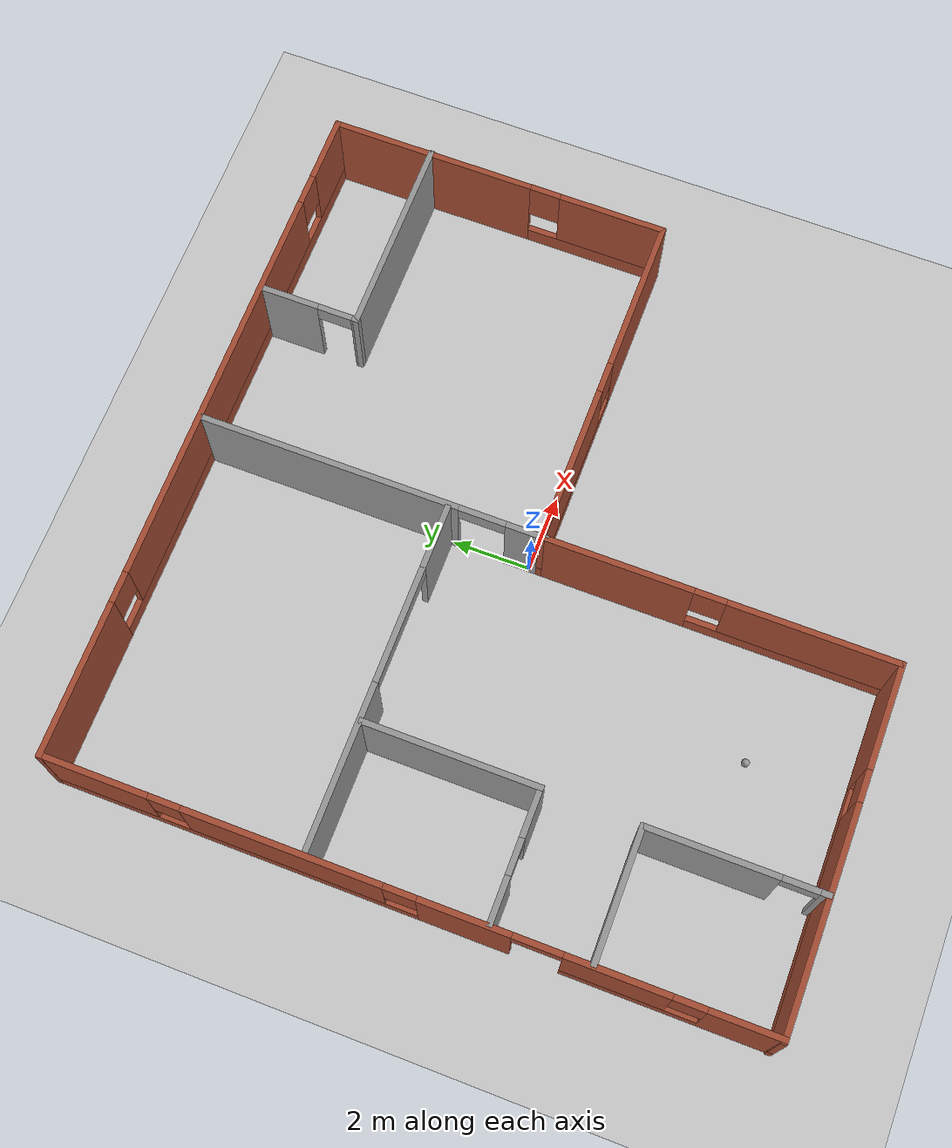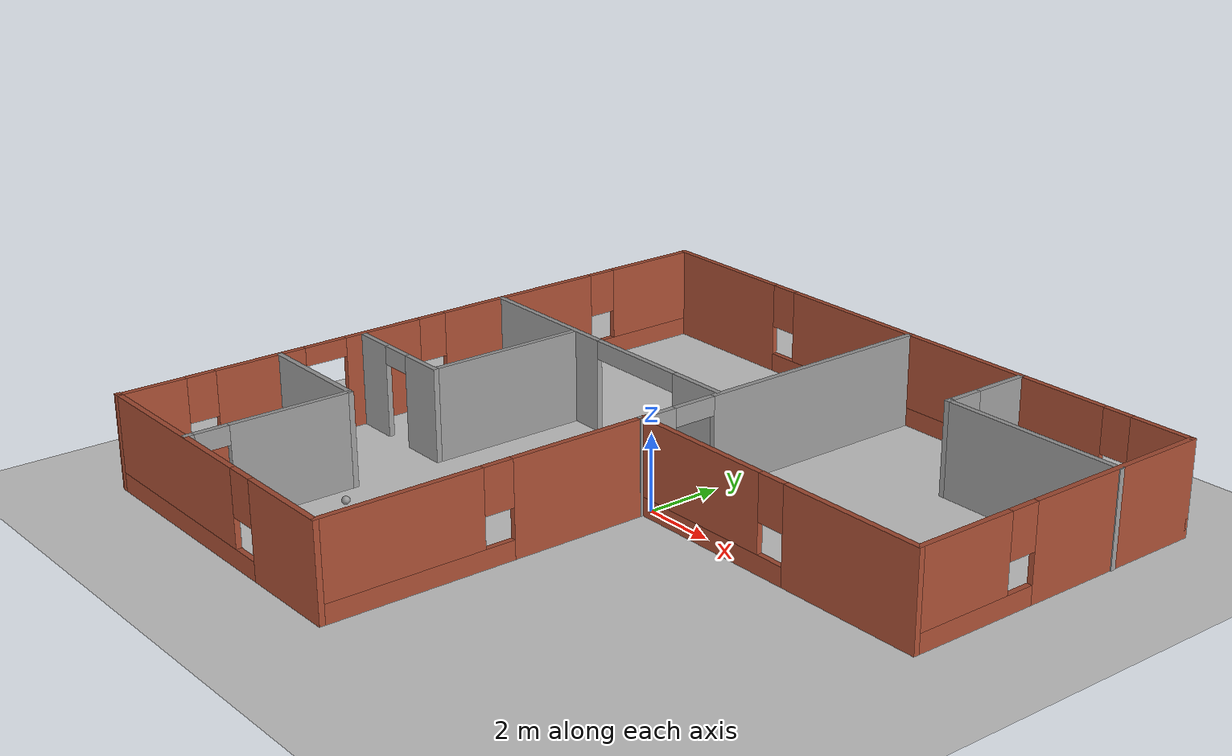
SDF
<sdf version="1.6">
 <world name="default">
  <plugin name="welcome_message" filename="libwelcome_message.so"/>
  <light name="sun" type="directional">
   <pose>0 0 10 0 -0 0</pose>
   <diffuse>0.8 0.8 0.8 1</diffuse>
   <specular>0.2 0.2 0.2 1</specular>
   <attenuation>
    <range>1000</range>
    <constant>0.9</constant>
    <linear>0.01</linear>
    <quadratic>0.001</quadratic>
   </attenuation>
   <direction>-0.5 0.1 -0.9</direction>
  </light>
  <model name="ground_plane">
   <static>1</static>
   <link name="link">
    <collision name="collision">
     <geometry><plane><normal>0 0 1</normal><size>100 100</size></plane></geometry>
     <surface><friction><ode><mu>100</mu><mu2>50</mu2></ode></friction></surface>
    </collision>
    <visual name="visual">
     <cast_shadows>0</cast_shadows>
     <geometry><plane><normal>0 0 1</normal><size>100 100</size></plane></geometry>
     <material>
      <script><uri>file://media/materials/scripts/gazebo.material</uri><name>Gazebo/Grey</name></script>
     </material>
    </visual>
   </link>
  </model>
  <gravity>0 0 -9.8</gravity>
  <magnetic_field>6e-06 2.3e-05 -4.2e-05</magnetic_field>
  <atmosphere type="adiabatic"/>
  <physics name="default_physics" default="0" type="ode">
   <max_step_size>0.001</max_step_size>
   <real_time_factor>1</real_time_factor>
   <real_time_update_rate>1000</real_time_update_rate>
  </physics>
  <scene><ambient>0.4 0.4 0.4 1</ambient><background>0.7 0.7 0.7 1</background><shadows>1</shadows></scene>
  <spherical_coordinates>
   <surface_model>EARTH_WGS84</surface_model>
   <latitude_deg>0</latitude_deg>
   <longitude_deg>0</longitude_deg>
   <elevation>0</elevation>
   <heading_deg>0</heading_deg>
  </spherical_coordinates>
  <model name="mybuilding">
   <pose>-0.074828 -0.254623 0 0 -0 0</pose>
   <link name="Wall_10">
    <pose>8.92888 4.425 0 0 0 -1.5708</pose>
    <visual name="Wall_10_Visual_0">
     <pose>-1.80671 0 1.25 0 -0 0</pose>
     <geometry><box><size>5.38659 0.15 2.5</size></box></geometry>
     <material>
      <script><uri>file://media/materials/scripts/gazebo.material</uri><name>Gazebo/Bricks</name></script>
      <ambient>1 1 1 1</ambient>
     </material>
     <meta><layer>0</layer></meta>
    </visual>
    <collision name="Wall_10_Collision_0">
     <geometry><box><size>5.38659 0.15 2.5</size></box></geometry>
     <pose>-1.80671 0 1.25 0 -0 0</pose>
    </collision>
    <visual name="Wall_10_Visual_1">
     <pose>2.69329 0 0.25 0 -0 0</pose>
     <geometry><box><size>3.61341 0.15 0.5</size></box></geometry>
     <material>
      <script><uri>file://media/materials/scripts/gazebo.material</uri><name>Gazebo/Bricks</name></script>
      <ambient>1 1 1 1</ambient>
     </material>
     <meta><layer>0</layer></meta>
    </visual>
    <collision name="Wall_10_Collision_1">
     <geometry><box><size>3.61341 0.15 0.5</size></box></geometry>
     <pose>2.69329 0 0.25 0 -0 0</pose>
    </collision>
    <visual name="Wall_10_Visual_2">
     <pose>3.09329 0 1.5 0 -0 0</pose>
     <geometry><box><size>2.81341 0.15 2</size></box></geometry>
     <material>
      <script><uri>file://media/materials/scripts/gazebo.material</uri><name>Gazebo/Bricks</name></script>
      <ambient>1 1 1 1</ambient>
     </material>
     <meta><layer>0</layer></meta>
    </visual>
    <collision name="Wall_10_Collision_2">
     <geometry><box><size>2.81341 0.15 2</size></box></geometry>
     <pose>3.09329 0 1.5 0 -0 0</pose>
    </collision>
    <visual name="Wall_10_Visual_3">
     <pose>1.28659 0 1.9 0 -0 0</pose>
     <geometry><box><size>0.8 0.15 1.2</size></box></geometry>
     <material>
      <script><uri>file://media/materials/scripts/gazebo.material</uri><name>Gazebo/Bricks</name></script>
      <ambient>1 1 1 1</ambient>
     </material>
     <meta><layer>0</layer></meta>
    </visual>
    <collision name="Wall_10_Collision_3">
     <geometry><box><size>0.8 0.15 1.2</size></box></geometry>
     <pose>1.28659 0 1.9 0 -0 0</pose>
    </collision>
   </link>
   <link name="Wall_11">
    <pose>4.50388 0 0 0 -0 3.14159</pose>
    <visual name="Wall_11_Visual_0">
     <pose>-2.47309 0 1.25 0 -0 0</pose>
     <geometry><box><size>4.05382 0.15 2.5</size></box></geometry>
     <material>
      <script><uri>file://media/materials/scripts/gazebo.material</uri><name>Gazebo/Bricks</name></script>
      <ambient>1 1 1 1</ambient>
     </material>
     <meta><layer>0</layer></meta>
    </visual>
    <collision name="Wall_11_Collision_0">
     <geometry><box><size>4.05382 0.15 2.5</size></box></geometry>
     <pose>-2.47309 0 1.25 0 -0 0</pose>
    </collision>
    <visual name="Wall_11_Visual_1">
     <pose>2.02691 0 0.25 0 -0 0</pose>
     <geometry><box><size>4.94618 0.15 0.5</size></box></geometry>
     <material>
      <script><uri>file://media/materials/scripts/gazebo.material</uri><name>Gazebo/Bricks</name></script>
      <ambient>1 1 1 1</ambient>
     </material>
     <meta><layer>0</layer></meta>
    </visual>
    <collision name="Wall_11_Collision_1">
     <geometry><box><size>4.94618 0.15 0.5</size></box></geometry>
     <pose>2.02691 0 0.25 0 -0 0</pose>
    </collision>
    <visual name="Wall_11_Visual_2">
     <pose>2.42691 0 1.5 0 -0 0</pose>
     <geometry><box><size>4.14618 0.15 2</size></box></geometry>
     <material>
      <script><uri>file://media/materials/scripts/gazebo.material</uri><name>Gazebo/Bricks</name></script>
      <ambient>1 1 1 1</ambient>
     </material>
     <meta><layer>0</layer></meta>
    </visual>
    <collision name="Wall_11_Collision_2">
     <geometry><box><size>4.14618 0.15 2</size></box></geometry>
     <pose>2.42691 0 1.5 0 -0 0</pose>
    </collision>
    <visual name="Wall_11_Visual_3">
     <pose>-0.046178 0 1.9 0 -0 0</pose>
     <geometry><box><size>0.8 0.15 1.2</size></box></geometry>
     <material>
      <script><uri>file://media/materials/scripts/gazebo.material</uri><name>Gazebo/Bricks</name></script>
      <ambient>1 1 1 1</ambient>
     </material>
     <meta><layer>0</layer></meta>
    </visual>
    <collision name="Wall_11_Collision_3">
     <geometry><box><size>0.8 0.15 1.2</size></box></geometry>
     <pose>-0.046178 0 1.9 0 -0 0</pose>
    </collision>
   </link>
   <link name="Wall_12">
    <pose>0.078877 -4.425 0 0 0 -1.5708</pose>
    <visual name="Wall_12_Visual_0">
     <pose>-2.56537 0 1.25 0 -0 0</pose>
     <geometry><box><size>3.86926 0.15 2.5</size></box></geometry>
     <material>
      <script><uri>file://media/materials/scripts/gazebo.material</uri><name>Gazebo/Bricks</name></script>
      <ambient>1 1 1 1</ambient>
     </material>
     <meta><layer>0</layer></meta>
    </visual>
    <collision name="Wall_12_Collision_0">
     <geometry><box><size>3.86926 0.15 2.5</size></box></geometry>
     <pose>-2.56537 0 1.25 0 -0 0</pose>
    </collision>
    <visual name="Wall_12_Visual_1">
     <pose>1.93463 0 0.25 0 -0 0</pose>
     <geometry><box><size>5.13074 0.15 0.5</size></box></geometry>
     <material>
      <script><uri>file://media/materials/scripts/gazebo.material</uri><name>Gazebo/Bricks</name></script>
      <ambient>1 1 1 1</ambient>
     </material>
     <meta><layer>0</layer></meta>
    </visual>
    <collision name="Wall_12_Collision_1">
     <geometry><box><size>5.13074 0.15 0.5</size></box></geometry>
     <pose>1.93463 0 0.25 0 -0 0</pose>
    </collision>
    <visual name="Wall_12_Visual_2">
     <pose>2.33463 0 1.5 0 -0 0</pose>
     <geometry><box><size>4.33074 0.15 2</size></box></geometry>
     <material>
      <script><uri>file://media/materials/scripts/gazebo.material</uri><name>Gazebo/Bricks</name></script>
      <ambient>1 1 1 1</ambient>
     </material>
     <meta><layer>0</layer></meta>
    </visual>
    <collision name="Wall_12_Collision_2">
     <geometry><box><size>4.33074 0.15 2</size></box></geometry>
     <pose>2.33463 0 1.5 0 -0 0</pose>
    </collision>
    <visual name="Wall_12_Visual_3">
     <pose>-0.230744 0 1.9 0 -0 0</pose>
     <geometry><box><size>0.8 0.15 1.2</size></box></geometry>
     <material>
      <script><uri>file://media/materials/scripts/gazebo.material</uri><name>Gazebo/Bricks</name></script>
      <ambient>1 1 1 1</ambient>
     </material>
     <meta><layer>0</layer></meta>
    </visual>
    <collision name="Wall_12_Collision_3">
     <geometry><box><size>0.8 0.15 1.2</size></box></geometry>
     <pose>-0.230744 0 1.9 0 -0 0</pose>
    </collision>
   </link>
   <link name="Wall_13">
    <pose>-4.43781 -8.85 0 0 -0 3.14159</pose>
    <visual name="Wall_13_Visual_0">
     <pose>-3.22777 0 1.25 0 -0 0</pose>
     <geometry><box><size>2.72783 0.15 2.5</size></box></geometry>
     <material>
      <script><uri>file://media/materials/scripts/gazebo.material</uri><name>Gazebo/Bricks</name></script>
      <ambient>1 1 1 1</ambient>
     </material>
     <meta><layer>0</layer></meta>
    </visual>
    <collision name="Wall_13_Collision_0">
     <geometry><box><size>2.72783 0.15 2.5</size></box></geometry>
     <pose>-3.22777 0 1.25 0 -0 0</pose>
    </collision>
    <visual name="Wall_13_Visual_1">
     <pose>1.36392 0 0.25 0 -0 0</pose>
     <geometry><box><size>6.45555 0.15 0.5</size></box></geometry>
     <material>
      <script><uri>file://media/materials/scripts/gazebo.material</uri><name>Gazebo/Bricks</name></script>
      <ambient>1 1 1 1</ambient>
     </material>
     <meta><layer>0</layer></meta>
    </visual>
    <collision name="Wall_13_Collision_1">
     <geometry><box><size>6.45555 0.15 0.5</size></box></geometry>
     <pose>1.36392 0 0.25 0 -0 0</pose>
    </collision>
    <visual name="Wall_13_Visual_2">
     <pose>1.76392 0 1.5 0 -0 0</pose>
     <geometry><box><size>5.65555 0.15 2</size></box></geometry>
     <material>
      <script><uri>file://media/materials/scripts/gazebo.material</uri><name>Gazebo/Bricks</name></script>
      <ambient>1 1 1 1</ambient>
     </material>
     <meta><layer>0</layer></meta>
    </visual>
    <collision name="Wall_13_Collision_2">
     <geometry><box><size>5.65555 0.15 2</size></box></geometry>
     <pose>1.76392 0 1.5 0 -0 0</pose>
    </collision>
    <visual name="Wall_13_Visual_3">
     <pose>-1.46386 0 1.9 0 -0 0</pose>
     <geometry><box><size>0.8 0.15 1.2</size></box></geometry>
     <material>
      <script><uri>file://media/materials/scripts/gazebo.material</uri><name>Gazebo/Bricks</name></script>
      <ambient>1 1 1 1</ambient>
     </material>
     <meta><layer>0</layer></meta>
    </visual>
    <collision name="Wall_13_Collision_3">
     <geometry><box><size>0.8 0.15 1.2</size></box></geometry>
     <pose>-1.46386 0 1.9 0 -0 0</pose>
    </collision>
   </link>
   <link name="Wall_14">
    <pose>-8.91783 -0.05 0 0 -0 1.5708</pose>
    <visual name="Wall_14_Visual_0">
     <pose>-7.96278 0 1.25 0 -0 0</pose>
     <geometry><box><size>1.82444 0.15 2.5</size></box></geometry>
     <material>
      <script><uri>file://media/materials/scripts/gazebo.material</uri><name>Gazebo/Bricks</name></script>
      <ambient>1 1 1 1</ambient>
     </material>
     <meta><layer>0</layer></meta>
    </visual>
    <collision name="Wall_14_Collision_0">
     <geometry><box><size>1.82444 0.15 2.5</size></box></geometry>
     <pose>-7.96278 0 1.25 0 -0 0</pose>
    </collision>
    <visual name="Wall_14_Visual_1">
     <pose>-1.40133 0 1.25 0 -0 0</pose>
     <geometry><box><size>2.24751 0.15 2.5</size></box></geometry>
     <material>
      <script><uri>file://media/materials/scripts/gazebo.material</uri><name>Gazebo/Bricks</name></script>
      <ambient>1 1 1 1</ambient>
     </material>
     <meta><layer>0</layer></meta>
    </visual>
    <collision name="Wall_14_Collision_1">
     <geometry><box><size>2.24751 0.15 2.5</size></box></geometry>
     <pose>-1.40133 0 1.25 0 -0 0</pose>
    </collision>
    <visual name="Wall_14_Visual_2">
     <pose>-5.38782 0 0.25 0 -0 0</pose>
     <geometry><box><size>3.32548 0.15 0.5</size></box></geometry>
     <material>
      <script><uri>file://media/materials/scripts/gazebo.material</uri><name>Gazebo/Bricks</name></script>
      <ambient>1 1 1 1</ambient>
     </material>
     <meta><layer>0</layer></meta>
    </visual>
    <collision name="Wall_14_Collision_2">
     <geometry><box><size>3.32548 0.15 0.5</size></box></geometry>
     <pose>-5.38782 0 0.25 0 -0 0</pose>
    </collision>
    <visual name="Wall_14_Visual_3">
     <pose>4.29871 0 0.25 0 -0 0</pose>
     <geometry><box><size>9.15257 0.15 0.5</size></box></geometry>
     <material>
      <script><uri>file://media/materials/scripts/gazebo.material</uri><name>Gazebo/Bricks</name></script>
      <ambient>1 1 1 1</ambient>
     </material>
     <meta><layer>0</layer></meta>
    </visual>
    <collision name="Wall_14_Collision_3">
     <geometry><box><size>9.15257 0.15 0.5</size></box></geometry>
     <pose>4.29871 0 0.25 0 -0 0</pose>
    </collision>
    <visual name="Wall_14_Visual_4">
     <pose>-4.98782 0 1.5 0 -0 0</pose>
     <geometry><box><size>2.52548 0.15 2</size></box></geometry>
     <material>
      <script><uri>file://media/materials/scripts/gazebo.material</uri><name>Gazebo/Bricks</name></script>
      <ambient>1 1 1 1</ambient>
     </material>
     <meta><layer>0</layer></meta>
    </visual>
    <collision name="Wall_14_Collision_4">
     <geometry><box><size>2.52548 0.15 2</size></box></geometry>
     <pose>-4.98782 0 1.5 0 -0 0</pose>
    </collision>
    <visual name="Wall_14_Visual_5">
     <pose>-4.98782 0 1.5 0 -0 0</pose>
     <geometry><box><size>2.52548 0.15 2</size></box></geometry>
     <material>
      <script><uri>file://media/materials/scripts/gazebo.material</uri><name>Gazebo/Bricks</name></script>
      <ambient>1 1 1 1</ambient>
     </material>
     <meta><layer>0</layer></meta>
    </visual>
    <collision name="Wall_14_Collision_5">
     <geometry><box><size>2.52548 0.15 2</size></box></geometry>
     <pose>-4.98782 0 1.5 0 -0 0</pose>
    </collision>
    <visual name="Wall_14_Visual_6">
     <pose>2.97185 0 1.5 0 -0 0</pose>
     <geometry><box><size>4.89886 0.15 2</size></box></geometry>
     <material>
      <script><uri>file://media/materials/scripts/gazebo.material</uri><name>Gazebo/Bricks</name></script>
      <ambient>1 1 1 1</ambient>
     </material>
     <meta><layer>0</layer></meta>
    </visual>
    <collision name="Wall_14_Collision_6">
     <geometry><box><size>4.89886 0.15 2</size></box></geometry>
     <pose>2.97185 0 1.5 0 -0 0</pose>
    </collision>
    <visual name="Wall_14_Visual_7">
     <pose>7.54814 0 1.5 0 -0 0</pose>
     <geometry><box><size>2.65372 0.15 2</size></box></geometry>
     <material>
      <script><uri>file://media/materials/scripts/gazebo.material</uri><name>Gazebo/Bricks</name></script>
      <ambient>1 1 1 1</ambient>
     </material>
     <meta><layer>0</layer></meta>
    </visual>
    <collision name="Wall_14_Collision_7">
     <geometry><box><size>2.65372 0.15 2</size></box></geometry>
     <pose>7.54814 0 1.5 0 -0 0</pose>
    </collision>
    <visual name="Wall_14_Visual_8">
     <pose>-6.65056 0 1.9 0 -0 0</pose>
     <geometry><box><size>0.8 0.15 1.2</size></box></geometry>
     <material>
      <script><uri>file://media/materials/scripts/gazebo.material</uri><name>Gazebo/Bricks</name></script>
      <ambient>1 1 1 1</ambient>
     </material>
     <meta><layer>0</layer></meta>
    </visual>
    <collision name="Wall_14_Collision_8">
     <geometry><box><size>0.8 0.15 1.2</size></box></geometry>
     <pose>-6.65056 0 1.9 0 -0 0</pose>
    </collision>
    <visual name="Wall_14_Visual_9">
     <pose>0.122426 0 1.9 0 -0 0</pose>
     <geometry><box><size>0.8 0.15 1.2</size></box></geometry>
     <material>
      <script><uri>file://media/materials/scripts/gazebo.material</uri><name>Gazebo/Bricks</name></script>
      <ambient>1 1 1 1</ambient>
     </material>
     <meta><layer>0</layer></meta>
    </visual>
    <collision name="Wall_14_Collision_9">
     <geometry><box><size>0.8 0.15 1.2</size></box></geometry>
     <pose>0.122426 0 1.9 0 -0 0</pose>
    </collision>
    <visual name="Wall_14_Visual_10">
     <pose>5.82128 0 1.9 0 -0 0</pose>
     <geometry><box><size>0.8 0.15 1.2</size></box></geometry>
     <material>
      <script><uri>file://media/materials/scripts/gazebo.material</uri><name>Gazebo/Bricks</name></script>
      <ambient>1 1 1 1</ambient>
     </material>
     <meta><layer>0</layer></meta>
    </visual>
    <collision name="Wall_14_Collision_10">
     <geometry><box><size>0.8 0.15 1.2</size></box></geometry>
     <pose>5.82128 0 1.9 0 -0 0</pose>
    </collision>
    <visual name="Wall_14_Visual_11">
     <pose>-3.12508 0 2.25 0 -0 0</pose>
     <geometry><box><size>1.2 0.15 0.5</size></box></geometry>
     <material>
      <script><uri>file://media/materials/scripts/gazebo.material</uri><name>Gazebo/Bricks</name></script>
      <ambient>1 1 1 1</ambient>
     </material>
     <meta><layer>0</layer></meta>
    </visual>
    <collision name="Wall_14_Collision_11">
     <geometry><box><size>1.2 0.15 0.5</size></box></geometry>
     <pose>-3.12508 0 2.25 0 -0 0</pose>
    </collision>
    <visual name="Wall_14_Visual_12">
     <pose>-3.12508 0 2.25 0 -0 0</pose>
     <geometry><box><size>1.2 0.15 0.5</size></box></geometry>
     <material>
      <script><uri>file://media/materials/scripts/gazebo.material</uri><name>Gazebo/Bricks</name></script>
      <ambient>1 1 1 1</ambient>
     </material>
     <meta><layer>0</layer></meta>
    </visual>
    <collision name="Wall_14_Collision_12">
     <geometry><box><size>1.2 0.15 0.5</size></box></geometry>
     <pose>-3.12508 0 2.25 0 -0 0</pose>
    </collision>
   </link>
   <link name="Wall_16">
    <pose>0.080726 4.34148 0 0 0 -1.5708</pose>
    <visual name="Wall_16_Visual_0">
     <pose>-1.13955 0 1.25 0 -0 0</pose>
     <geometry><box><size>6.7209 0.15 2.5</size></box></geometry>
     <material>
      <script><uri>file://media/materials/scripts/gazebo.material</uri><name>Gazebo/Grey</name></script>
      <ambient>1 1 1 1</ambient>
     </material>
     <meta><layer>0</layer></meta>
    </visual>
    <collision name="Wall_16_Collision_0">
     <geometry><box><size>6.7209 0.15 2.5</size></box></geometry>
     <pose>-1.13955 0 1.25 0 -0 0</pose>
    </collision>
    <visual name="Wall_16_Visual_1">
     <pose>3.96045 0 1.25 0 -0 0</pose>
     <geometry><box><size>1.0791 0.15 2.5</size></box></geometry>
     <material>
      <script><uri>file://media/materials/scripts/gazebo.material</uri><name>Gazebo/Grey</name></script>
      <ambient>1 1 1 1</ambient>
     </material>
     <meta><layer>0</layer></meta>
    </visual>
    <collision name="Wall_16_Collision_1">
     <geometry><box><size>1.0791 0.15 2.5</size></box></geometry>
     <pose>3.96045 0 1.25 0 -0 0</pose>
    </collision>
    <visual name="Wall_16_Visual_2">
     <pose>2.8209 0 2.25 0 -0 0</pose>
     <geometry><box><size>1.2 0.15 0.5</size></box></geometry>
     <material>
      <script><uri>file://media/materials/scripts/gazebo.material</uri><name>Gazebo/Grey</name></script>
      <ambient>1 1 1 1</ambient>
     </material>
     <meta><layer>0</layer></meta>
    </visual>
    <collision name="Wall_16_Collision_2">
     <geometry><box><size>1.2 0.15 0.5</size></box></geometry>
     <pose>2.8209 0 2.25 0 -0 0</pose>
    </collision>
   </link>
   <link name="Wall_18">
    <pose>-4.44721 2.3705 0 0 -0 0</pose>
    <visual name="Wall_18_Visual_0">
     <pose>-2.34217 0 1.25 0 -0 0</pose>
     <geometry><box><size>4.31566 0.15 2.5</size></box></geometry>
     <material>
      <script><uri>file://media/materials/scripts/gazebo.material</uri><name>Gazebo/Grey</name></script>
      <ambient>1 1 1 1</ambient>
     </material>
     <meta><layer>0</layer></meta>
    </visual>
    <collision name="Wall_18_Collision_0">
     <geometry><box><size>4.31566 0.15 2.5</size></box></geometry>
     <pose>-2.34217 0 1.25 0 -0 0</pose>
    </collision>
    <visual name="Wall_18_Visual_1">
     <pose>3.65783 0 1.25 0 -0 0</pose>
     <geometry><box><size>1.68434 0.15 2.5</size></box></geometry>
     <material>
      <script><uri>file://media/materials/scripts/gazebo.material</uri><name>Gazebo/Grey</name></script>
      <ambient>1 1 1 1</ambient>
     </material>
     <meta><layer>0</layer></meta>
    </visual>
    <collision name="Wall_18_Collision_1">
     <geometry><box><size>1.68434 0.15 2.5</size></box></geometry>
     <pose>3.65783 0 1.25 0 -0 0</pose>
    </collision>
    <visual name="Wall_18_Visual_2">
     <pose>1.31566 0 2.25 0 -0 0</pose>
     <geometry><box><size>3 0.15 0.5</size></box></geometry>
     <material>
      <script><uri>file://media/materials/scripts/gazebo.material</uri><name>Gazebo/Grey</name></script>
      <ambient>1 1 1 1</ambient>
     </material>
     <meta><layer>0</layer></meta>
    </visual>
    <collision name="Wall_18_Collision_2">
     <geometry><box><size>3 0.15 0.5</size></box></geometry>
     <pose>1.31566 0 2.25 0 -0 0</pose>
    </collision>
   </link>
   <link name="Wall_20">
    <collision name="Wall_20_Collision">
     <geometry><box><size>4.5 0.15 2.5</size></box></geometry>
     <pose>0 0 1.25 0 -0 0</pose>
    </collision>
    <visual name="Wall_20_Visual">
     <pose>0 0 1.25 0 -0 0</pose>
     <geometry><box><size>4.5 0.15 2.5</size></box></geometry>
     <material>
      <script><uri>file://media/materials/scripts/gazebo.material</uri><name>Gazebo/Grey</name></script>
      <ambient>1 1 1 1</ambient>
     </material>
     <meta><layer>0</layer></meta>
    </visual>
    <pose>-5.59981 0.139879 0 0 0 -1.5708</pose>
   </link>
   <link name="Wall_21">
    <pose>-7.22481 -2.03512 0 0 -0 3.14159</pose>
    <visual name="Wall_21_Visual_0">
     <pose>-1.05244 0 1.25 0 -0 0</pose>
     <geometry><box><size>1.29513 0.15 2.5</size></box></geometry>
     <material>
      <script><uri>file://media/materials/scripts/gazebo.material</uri><name>Gazebo/Grey</name></script>
      <ambient>1 1 1 1</ambient>
     </material>
     <meta><layer>0</layer></meta>
    </visual>
    <collision name="Wall_21_Collision_0">
     <geometry><box><size>1.29513 0.15 2.5</size></box></geometry>
     <pose>-1.05244 0 1.25 0 -0 0</pose>
    </collision>
    <visual name="Wall_21_Visual_1">
     <pose>1.09756 0 1.25 0 -0 0</pose>
     <geometry><box><size>1.20487 0.15 2.5</size></box></geometry>
     <material>
      <script><uri>file://media/materials/scripts/gazebo.material</uri><name>Gazebo/Grey</name></script>
      <ambient>1 1 1 1</ambient>
     </material>
     <meta><layer>0</layer></meta>
    </visual>
    <collision name="Wall_21_Collision_1">
     <geometry><box><size>1.20487 0.15 2.5</size></box></geometry>
     <pose>1.09756 0 1.25 0 -0 0</pose>
    </collision>
    <visual name="Wall_21_Visual_2">
     <pose>0.045131 0 2.25 0 -0 0</pose>
     <geometry><box><size>0.9 0.15 0.5</size></box></geometry>
     <material>
      <script><uri>file://media/materials/scripts/gazebo.material</uri><name>Gazebo/Grey</name></script>
      <ambient>1 1 1 1</ambient>
     </material>
     <meta><layer>0</layer></meta>
    </visual>
    <collision name="Wall_21_Collision_2">
     <geometry><box><size>0.9 0.15 0.5</size></box></geometry>
     <pose>0.045131 0 2.25 0 -0 0</pose>
    </collision>
   </link>
   <link name="Wall_23">
    <pose>-5.61281 -6.64612 0 0 -0 1.5708</pose>
    <visual name="Wall_23_Visual_0">
     <pose>-2.12015 0 1.25 0 -0 0</pose>
     <geometry><box><size>0.259702 0.15 2.5</size></box></geometry>
     <material>
      <script><uri>file://media/materials/scripts/gazebo.material</uri><name>Gazebo/Grey</name></script>
      <ambient>1 1 1 1</ambient>
     </material>
     <meta><layer>0</layer></meta>
    </visual>
    <collision name="Wall_23_Collision_0">
     <geometry><box><size>0.259702 0.15 2.5</size></box></geometry>
     <pose>-2.12015 0 1.25 0 -0 0</pose>
    </collision>
    <visual name="Wall_23_Visual_1">
     <pose>0.579851 0 1.25 0 -0 0</pose>
     <geometry><box><size>3.3403 0.15 2.5</size></box></geometry>
     <material>
      <script><uri>file://media/materials/scripts/gazebo.material</uri><name>Gazebo/Grey</name></script>
      <ambient>1 1 1 1</ambient>
     </material>
     <meta><layer>0</layer></meta>
    </visual>
    <collision name="Wall_23_Collision_1">
     <geometry><box><size>3.3403 0.15 2.5</size></box></geometry>
     <pose>0.579851 0 1.25 0 -0 0</pose>
    </collision>
    <visual name="Wall_23_Visual_2">
     <pose>-1.5403 0 2.25 0 -0 0</pose>
     <geometry><box><size>0.9 0.15 0.5</size></box></geometry>
     <material>
      <script><uri>file://media/materials/scripts/gazebo.material</uri><name>Gazebo/Grey</name></script>
      <ambient>1 1 1 1</ambient>
     </material>
     <meta><layer>0</layer></meta>
    </visual>
    <collision name="Wall_23_Collision_2">
     <geometry><box><size>0.9 0.15 0.5</size></box></geometry>
     <pose>-1.5403 0 2.25 0 -0 0</pose>
    </collision>
   </link>
   <link name="Wall_24">
    <collision name="Wall_24_Collision">
     <geometry><box><size>3.4 0.15 2.5</size></box></geometry>
     <pose>0 0 1.25 0 -0 0</pose>
    </collision>
    <visual name="Wall_24_Visual">
     <pose>0 0 1.25 0 -0 0</pose>
     <geometry><box><size>3.4 0.15 2.5</size></box></geometry>
     <material>
      <script><uri>file://media/materials/scripts/gazebo.material</uri><name>Gazebo/Grey</name></script>
      <ambient>1 1 1 1</ambient>
     </material>
     <meta><layer>0</layer></meta>
    </visual>
    <pose>-7.23781 -4.47112 0 0 -0 3.14159</pose>
   </link>
   <link name="Wall_43">
    <collision name="Wall_43_Collision">
     <geometry><box><size>5.25 0.15 2.5</size></box></geometry>
     <pose>0 0 1.25 0 -0 0</pose>
    </collision>
    <visual name="Wall_43_Visual">
     <pose>0 0 1.25 0 -0 0</pose>
     <geometry><box><size>5.25 0.15 2.5</size></box></geometry>
     <material>
      <script><uri>file://media/materials/scripts/gazebo.material</uri><name>Gazebo/Grey</name></script>
      <ambient>1 1 1 1</ambient>
     </material>
     <meta><layer>0</layer></meta>
    </visual>
    <pose>6.4045 6.27481 0 0 -0 3.14159</pose>
   </link>
   <link name="Wall_44">
    <pose>3.8545 7.54981 0 0 -0 1.5708</pose>
    <visual name="Wall_44_Visual_0">
     <pose>-1.25121 0 1.25 0 -0 0</pose>
     <geometry><box><size>0.19758 0.15 2.5</size></box></geometry>
     <material>
      <script><uri>file://media/materials/scripts/gazebo.material</uri><name>Gazebo/Grey</name></script>
      <ambient>1 1 1 1</ambient>
     </material>
     <meta><layer>0</layer></meta>
    </visual>
    <collision name="Wall_44_Collision_0">
     <geometry><box><size>0.19758 0.15 2.5</size></box></geometry>
     <pose>-1.25121 0 1.25 0 -0 0</pose>
    </collision>
    <visual name="Wall_44_Visual_1">
     <pose>0.54879 0 1.25 0 -0 0</pose>
     <geometry><box><size>1.60242 0.15 2.5</size></box></geometry>
     <material>
      <script><uri>file://media/materials/scripts/gazebo.material</uri><name>Gazebo/Grey</name></script>
      <ambient>1 1 1 1</ambient>
     </material>
     <meta><layer>0</layer></meta>
    </visual>
    <collision name="Wall_44_Collision_1">
     <geometry><box><size>1.60242 0.15 2.5</size></box></geometry>
     <pose>0.54879 0 1.25 0 -0 0</pose>
    </collision>
    <visual name="Wall_44_Visual_2">
     <pose>-0.70242 0 2.25 0 -0 0</pose>
     <geometry><box><size>0.9 0.15 0.5</size></box></geometry>
     <material>
      <script><uri>file://media/materials/scripts/gazebo.material</uri><name>Gazebo/Grey</name></script>
      <ambient>1 1 1 1</ambient>
     </material>
     <meta><layer>0</layer></meta>
    </visual>
    <collision name="Wall_44_Collision_2">
     <geometry><box><size>0.9 0.15 0.5</size></box></geometry>
     <pose>-0.70242 0 2.25 0 -0 0</pose>
    </collision>
   </link>
   <link name="Wall_9">
    <pose>0.003877 8.85 0 0 -0 0</pose>
    <visual name="Wall_9_Visual_0">
     <pose>-7.00943 0 1.25 0 -0 0</pose>
     <geometry><box><size>3.98114 0.15 2.5</size></box></geometry>
     <material>
      <script><uri>file://media/materials/scripts/gazebo.material</uri><name>Gazebo/Bricks</name></script>
      <ambient>1 1 1 1</ambient>
     </material>
     <meta><layer>0</layer></meta>
    </visual>
    <collision name="Wall_9_Collision_0">
     <geometry><box><size>3.98114 0.15 2.5</size></box></geometry>
     <pose>-7.00943 0 1.25 0 -0 0</pose>
    </collision>
    <visual name="Wall_9_Visual_1">
     <pose>1.99057 0 0.25 0 -0 0</pose>
     <geometry><box><size>14.0189 0.15 0.5</size></box></geometry>
     <material>
      <script><uri>file://media/materials/scripts/gazebo.material</uri><name>Gazebo/Bricks</name></script>
      <ambient>1 1 1 1</ambient>
     </material>
     <meta><layer>0</layer></meta>
    </visual>
    <collision name="Wall_9_Collision_1">
     <geometry><box><size>14.0189 0.15 0.5</size></box></geometry>
     <pose>1.99057 0 0.25 0 -0 0</pose>
    </collision>
    <visual name="Wall_9_Visual_2">
     <pose>1.11186 0 1.5 0 -0 0</pose>
     <geometry><box><size>10.6614 0.15 2</size></box></geometry>
     <material>
      <script><uri>file://media/materials/scripts/gazebo.material</uri><name>Gazebo/Bricks</name></script>
      <ambient>1 1 1 1</ambient>
     </material>
     <meta><layer>0</layer></meta>
    </visual>
    <collision name="Wall_9_Collision_2">
     <geometry><box><size>10.6614 0.15 2</size></box></geometry>
     <pose>1.11186 0 1.5 0 -0 0</pose>
    </collision>
    <visual name="Wall_9_Visual_3">
     <pose>8.12129 0 1.5 0 -0 0</pose>
     <geometry><box><size>1.75742 0.15 2</size></box></geometry>
     <material>
      <script><uri>file://media/materials/scripts/gazebo.material</uri><name>Gazebo/Bricks</name></script>
      <ambient>1 1 1 1</ambient>
     </material>
     <meta><layer>0</layer></meta>
    </visual>
    <collision name="Wall_9_Collision_3">
     <geometry><box><size>1.75742 0.15 2</size></box></geometry>
     <pose>8.12129 0 1.5 0 -0 0</pose>
    </collision>
    <visual name="Wall_9_Visual_4">
     <pose>-4.61886 0 1.9 0 -0 0</pose>
     <geometry><box><size>0.8 0.15 1.2</size></box></geometry>
     <material>
      <script><uri>file://media/materials/scripts/gazebo.material</uri><name>Gazebo/Bricks</name></script>
      <ambient>1 1 1 1</ambient>
     </material>
     <meta><layer>0</layer></meta>
    </visual>
    <collision name="Wall_9_Collision_4">
     <geometry><box><size>0.8 0.15 1.2</size></box></geometry>
     <pose>-4.61886 0 1.9 0 -0 0</pose>
    </collision>
    <visual name="Wall_9_Visual_5">
     <pose>6.84258 0 1.9 0 -0 0</pose>
     <geometry><box><size>0.8 0.15 1.2</size></box></geometry>
     <material>
      <script><uri>file://media/materials/scripts/gazebo.material</uri><name>Gazebo/Bricks</name></script>
      <ambient>1 1 1 1</ambient>
     </material>
     <meta><layer>0</layer></meta>
    </visual>
    <collision name="Wall_9_Collision_5">
     <geometry><box><size>0.8 0.15 1.2</size></box></geometry>
     <pose>6.84258 0 1.9 0 -0 0</pose>
    </collision>
   </link>
   <static>1</static>
  </model>
  <model name="my_ball">
   <link name="link">
    <inertial>
     <mass>1</mass>
     <inertia><ixx>0.1</ixx><ixy>0</ixy><ixz>0</ixz><iyy>0.1</iyy><iyz>0</iyz><izz>0.1</izz></inertia>
    </inertial>
    <visual name="visual">
     <geometry><sphere><radius>0.1</radius></sphere></geometry>
     <material>
      <script><name>Gazebo/Grey</name><uri>file://media/materials/scripts/gazebo.material</uri></script>
      <ambient>1 1 1 1</ambient>
      <diffuse>1 1 1 1</diffuse>
      <specular>1 1 1 1</specular>
      <emissive>1 1 1 1</emissive>
      <shader type="vertex"><normal_map>__default__</normal_map></shader>
     </material>
    </visual>
    <collision name="collision">
     <geometry><sphere><radius>0.1</radius></sphere></geometry>
     <surface>
      <friction>
       <ode><mu>1</mu><mu2>1</mu2><fdir1>0 0 0</fdir1><slip1>0</slip1><slip2>0</slip2></ode>
       <torsional>
        <coefficient>1</coefficient>
        <patch_radius>0</patch_radius>
        <surface_radius>0</surface_radius>
        <use_patch_radius>1</use_patch_radius>
        <ode><slip>0</slip></ode>
       </torsional>
      </friction>
      <bounce><restitution_coefficient>0</restitution_coefficient><threshold>1e+06</threshold></bounce>
      <contact>
       <collide_without_contact>0</collide_without_contact>
       <collide_without_contact_bitmask>1</collide_without_contact_bitmask>
       <collide_bitmask>1</collide_bitmask>
       <ode>
        <soft_cfm>0</soft_cfm>
        <soft_erp>0.2</soft_erp>
        <kp>1e+13</kp>
        <kd>1</kd>
        <max_vel>0.01</max_vel>
        <min_depth>0</min_depth>
       </ode>
       <bullet>
        <split_impulse>1</split_impulse>
        <split_impulse_penetration_threshold>-0.01</split_impulse_penetration_threshold>
        <soft_cfm>0</soft_cfm>
        <soft_erp>0.2</soft_erp>
        <kp>1e+13</kp>
        <kd>1</kd>
       </bullet>
      </contact>
     </surface>
    </collision>
   </link>
   <static>0</static>
   <pose>-3.1024 -6.50405 1.06476 0 -0 0</pose>
  </model>
 </world>
</sdf>
